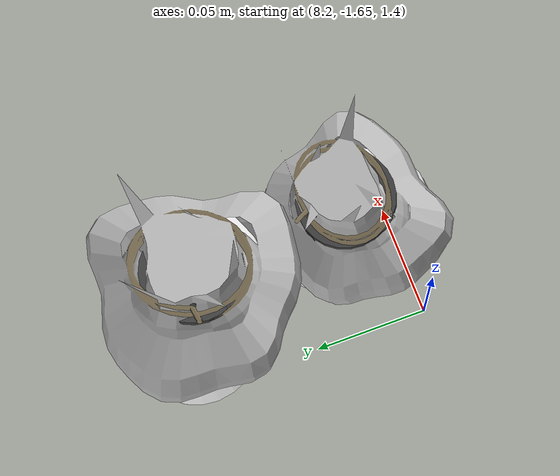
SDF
<sdf version="1.11">
 <world name="peach_orchard">
  <model name="ground">
   <static>true</static>
   <link name="link">
    <visual name="soil">
     <geometry><plane><normal>0 0 1</normal><size>32 22</size></plane></geometry>
     <material>
      <ambient>1 1 1 1</ambient>
      <diffuse>1 1 1 1</diffuse>
      <specular>0.1 0.1 0.1 1</specular>
      <pbr>
       <metal>
        <albedo_map>textures/soil_albedo.png</albedo_map>
        <normal_map type="tangent">textures/soil_normal.png</normal_map>
        <roughness>0.95</roughness>
        <metalness>0</metalness>
       </metal>
      </pbr>
     </material>
    </visual>
    <collision name="c_soil">
     <geometry><plane><normal>0 0 1</normal><size>32 22</size></plane></geometry>
    </collision>
   </link>
  </model>
  <model name="peach_tree_r4_t2_00">
   <pose>8.23568 -1.63141 1.43017 0 0.159908 1.8139</pose>
   <static>true</static>
   <link name="bag">
    <visual name="bag_mesh">
     <pose>0 0 0.0414168 0 0 0</pose>
     <geometry>
      <mesh><uri>model://peach_sim/meshes/bagged_peach.glb</uri><scale>0.909488 1.08695 0.941291</scale></mesh>
     </geometry>
    </visual>
    <visual name="body">
     <pose>0 0 0.0234168 0 0 0</pose>
     <geometry><ellipsoid><radii>0.0341058 0.0282608 0.0252901</radii></ellipsoid></geometry>
     <material>
      <ambient>1 1 1 1</ambient>
      <diffuse>1 1 1 1</diffuse>
      <specular>0.1 0.1 0.1 1</specular>
      <pbr>
       <metal>
        <albedo_map>textures/paper_bag_albedo.png</albedo_map>
        <normal_map type="tangent">textures/paper_bag_normal.png</normal_map>
        <roughness>0.72</roughness>
        <metalness>0</metalness>
       </metal>
      </pbr>
     </material>
    </visual>
    <visual name="bottom_fold">
     <pose>0 0 0.012 0 0 0.35</pose>
     <geometry><box><size>0.052864 0.0325 0.022</size></box></geometry>
     <material>
      <ambient>1 1 1 1</ambient>
      <diffuse>1 1 1 1</diffuse>
      <specular>0.1 0.1 0.1 1</specular>
      <pbr>
       <metal>
        <albedo_map>textures/paper_bag_albedo.png</albedo_map>
        <normal_map type="tangent">textures/paper_bag_normal.png</normal_map>
        <roughness>0.8</roughness>
        <metalness>0</metalness>
       </metal>
      </pbr>
     </material>
    </visual>
    <visual name="fruit">
     <pose>0 0 0.0174509 0 0 0</pose>
     <geometry><sphere><radius>0.0243889</radius></sphere></geometry>
     <material>
      <ambient>1 1 1 1</ambient>
      <diffuse>1 1 1 1</diffuse>
      <specular>0.1 0.1 0.1 1</specular>
      <pbr>
       <metal>
        <albedo_map>textures/fruit_skin_albedo.png</albedo_map>
        <normal_map type="tangent">textures/fruit_skin_normal.png</normal_map>
        <roughness>0.55</roughness>
        <metalness>0</metalness>
       </metal>
      </pbr>
     </material>
    </visual>
    <visual name="neck">
     <pose>0 0 0.0558336 0 0 0</pose>
     <geometry><cylinder><radius>0.013</radius><length>0.018</length></cylinder></geometry>
     <material>
      <ambient>1 1 1 1</ambient>
      <diffuse>1 1 1 1</diffuse>
      <specular>0.1 0.1 0.1 1</specular>
      <pbr>
       <metal>
        <albedo_map>textures/paper_bag_albedo.png</albedo_map>
        <normal_map type="tangent">textures/paper_bag_normal.png</normal_map>
        <roughness>0.75</roughness>
        <metalness>0</metalness>
       </metal>
      </pbr>
     </material>
    </visual>
    <visual name="gather">
     <pose>0 0 0.0368336 0 0 0</pose>
     <geometry><cylinder><radius>0.019</radius><length>0.02</length></cylinder></geometry>
     <material>
      <ambient>1 1 1 1</ambient>
      <diffuse>1 1 1 1</diffuse>
      <specular>0.1 0.1 0.1 1</specular>
      <pbr>
       <metal>
        <albedo_map>textures/paper_bag_albedo.png</albedo_map>
        <normal_map type="tangent">textures/paper_bag_normal.png</normal_map>
        <roughness>0.8</roughness>
        <metalness>0</metalness>
       </metal>
      </pbr>
     </material>
    </visual>
    <visual name="inner_paper">
     <pose>0 0 0.0608336 0 0 0</pose>
     <geometry><cylinder><radius>0.01</radius><length>0.008</length></cylinder></geometry>
     <material>
      <ambient>0.180392 0.14902 0.133333 1</ambient>
      <diffuse>0.180392 0.14902 0.133333 1</diffuse>
      <specular>0.1 0.1 0.1 1</specular>
     </material>
    </visual>
    <visual name="wire_0">
     <pose>0 0 0.0508336 0 0 0</pose>
     <geometry><cylinder><radius>0.0205</radius><length>0.0035</length></cylinder></geometry>
     <material>
      <ambient>0.25 0.25 0.25 1</ambient>
      <diffuse>0.25 0.25 0.25 1</diffuse>
      <specular>0.1 0.1 0.1 1</specular>
     </material>
    </visual>
    <visual name="wire_1">
     <pose>0 0 0.0578336 0 0 0</pose>
     <geometry><cylinder><radius>0.0205</radius><length>0.0035</length></cylinder></geometry>
     <material>
      <ambient>0.25 0.25 0.25 1</ambient>
      <diffuse>0.25 0.25 0.25 1</diffuse>
      <specular>0.1 0.1 0.1 1</specular>
     </material>
    </visual>
    <visual name="wire_tail">
     <pose>0.01 0 0.0588336 0 0.521618 0</pose>
     <geometry><cylinder><radius>0.0012</radius><length>0.026</length></cylinder></geometry>
     <material>
      <ambient>0.25 0.25 0.25 1</ambient>
      <diffuse>0.25 0.25 0.25 1</diffuse>
      <specular>0.1 0.1 0.1 1</specular>
     </material>
    </visual>
    <collision name="c_body">
     <pose>0 0 0.0234168 0 0 0</pose>
     <geometry><cylinder><radius>0.0341058</radius><length>0.0468336</length></cylinder></geometry>
    </collision>
   </link>
  </model>
  <model name="peach_tree_r4_t2_01">
   <pose>8.22 -1.55252 1.45 0 0.0387121 2.85169</pose>
   <static>true</static>
   <link name="bag">
    <visual name="bag_mesh">
     <pose>0 0 0.0457934 0 0 0</pose>
     <geometry>
      <mesh><uri>model://peach_sim/meshes/bagged_peach.glb</uri><scale>1.04449 1.22272 1.04076</scale></mesh>
     </geometry>
    </visual>
    <visual name="body">
     <pose>0 0 0.0277934 0 0 0</pose>
     <geometry><ellipsoid><radii>0.0391684 0.0317906 0.0300169</radii></ellipsoid></geometry>
     <material>
      <ambient>1 1 1 1</ambient>
      <diffuse>1 1 1 1</diffuse>
      <specular>0.1 0.1 0.1 1</specular>
      <pbr>
       <metal>
        <albedo_map>textures/paper_bag_albedo.png</albedo_map>
        <normal_map type="tangent">textures/paper_bag_normal.png</normal_map>
        <roughness>0.72</roughness>
        <metalness>0</metalness>
       </metal>
      </pbr>
     </material>
    </visual>
    <visual name="bottom_fold">
     <pose>0 0 0.012 0 0 0.35</pose>
     <geometry><box><size>0.0607111 0.0365592 0.022</size></box></geometry>
     <material>
      <ambient>1 1 1 1</ambient>
      <diffuse>1 1 1 1</diffuse>
      <specular>0.1 0.1 0.1 1</specular>
      <pbr>
       <metal>
        <albedo_map>textures/paper_bag_albedo.png</albedo_map>
        <normal_map type="tangent">textures/paper_bag_normal.png</normal_map>
        <roughness>0.8</roughness>
        <metalness>0</metalness>
       </metal>
      </pbr>
     </material>
    </visual>
    <visual name="fruit">
     <pose>0 0 0.0186055 0 0 0</pose>
     <geometry><sphere><radius>0.0255898</radius></sphere></geometry>
     <material>
      <ambient>1 1 1 1</ambient>
      <diffuse>1 1 1 1</diffuse>
      <specular>0.1 0.1 0.1 1</specular>
      <pbr>
       <metal>
        <albedo_map>textures/fruit_skin_albedo.png</albedo_map>
        <normal_map type="tangent">textures/fruit_skin_normal.png</normal_map>
        <roughness>0.55</roughness>
        <metalness>0</metalness>
       </metal>
      </pbr>
     </material>
    </visual>
    <visual name="neck">
     <pose>0 0 0.0645868 0 0 0</pose>
     <geometry><cylinder><radius>0.013</radius><length>0.018</length></cylinder></geometry>
     <material>
      <ambient>1 1 1 1</ambient>
      <diffuse>1 1 1 1</diffuse>
      <specular>0.1 0.1 0.1 1</specular>
      <pbr>
       <metal>
        <albedo_map>textures/paper_bag_albedo.png</albedo_map>
        <normal_map type="tangent">textures/paper_bag_normal.png</normal_map>
        <roughness>0.75</roughness>
        <metalness>0</metalness>
       </metal>
      </pbr>
     </material>
    </visual>
    <visual name="gather">
     <pose>0 0 0.0455868 0 0 0</pose>
     <geometry><cylinder><radius>0.019</radius><length>0.02</length></cylinder></geometry>
     <material>
      <ambient>1 1 1 1</ambient>
      <diffuse>1 1 1 1</diffuse>
      <specular>0.1 0.1 0.1 1</specular>
      <pbr>
       <metal>
        <albedo_map>textures/paper_bag_albedo.png</albedo_map>
        <normal_map type="tangent">textures/paper_bag_normal.png</normal_map>
        <roughness>0.8</roughness>
        <metalness>0</metalness>
       </metal>
      </pbr>
     </material>
    </visual>
    <visual name="inner_paper">
     <pose>0 0 0.0695868 0 0 0</pose>
     <geometry><cylinder><radius>0.01</radius><length>0.008</length></cylinder></geometry>
     <material>
      <ambient>0.180392 0.14902 0.133333 1</ambient>
      <diffuse>0.180392 0.14902 0.133333 1</diffuse>
      <specular>0.1 0.1 0.1 1</specular>
     </material>
    </visual>
    <visual name="wire_0">
     <pose>0 0 0.0595868 0 0 0</pose>
     <geometry><cylinder><radius>0.0205</radius><length>0.0035</length></cylinder></geometry>
     <material>
      <ambient>0.25 0.25 0.25 1</ambient>
      <diffuse>0.25 0.25 0.25 1</diffuse>
      <specular>0.1 0.1 0.1 1</specular>
     </material>
    </visual>
    <visual name="wire_1">
     <pose>0 0 0.0665868 0 0 0</pose>
     <geometry><cylinder><radius>0.0205</radius><length>0.0035</length></cylinder></geometry>
     <material>
      <ambient>0.25 0.25 0.25 1</ambient>
      <diffuse>0.25 0.25 0.25 1</diffuse>
      <specular>0.1 0.1 0.1 1</specular>
     </material>
    </visual>
    <visual name="wire_tail">
     <pose>0.01 0 0.0675868 0 0.521618 0</pose>
     <geometry><cylinder><radius>0.0012</radius><length>0.026</length></cylinder></geometry>
     <material>
      <ambient>0.25 0.25 0.25 1</ambient>
      <diffuse>0.25 0.25 0.25 1</diffuse>
      <specular>0.1 0.1 0.1 1</specular>
     </material>
    </visual>
    <collision name="c_body">
     <pose>0 0 0.0277934 0 0 0</pose>
     <geometry><cylinder><radius>0.0391684</radius><length>0.0555868</length></cylinder></geometry>
    </collision>
   </link>
  </model>
 </world>
</sdf>
